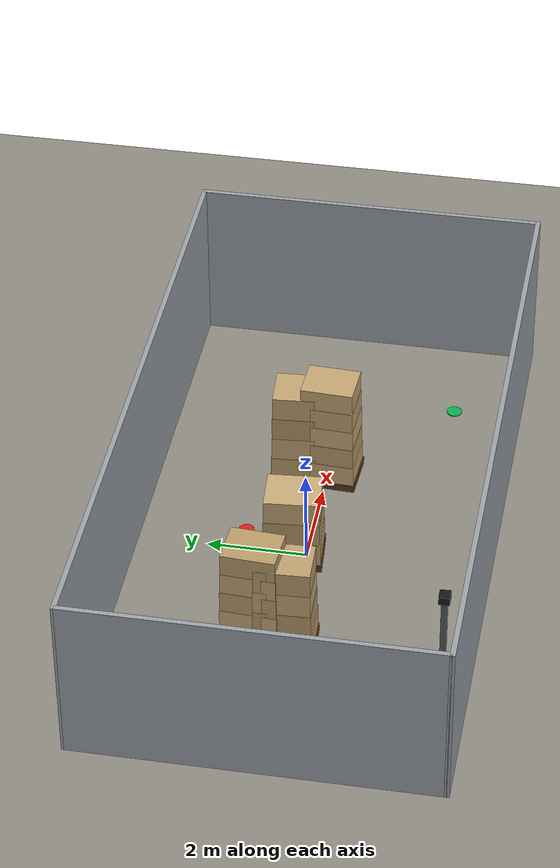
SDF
<sdf version="1.7">
 <world name="warehouse_putaway">
  <atmosphere type="adiabatic"/>
  <gravity>0 0 -9.8</gravity>
  <magnetic_field>6.0e-6 2.3e-5 -4.2e-5</magnetic_field>
  <physics type="ode" name="default_physics">
   <max_step_size>0.004</max_step_size>
   <real_time_factor>1.0</real_time_factor>
   <real_time_update_rate>250</real_time_update_rate>
  </physics>
  <plugin filename="gz-sim-physics-system" name="gz::sim::systems::Physics"/>
  <plugin filename="gz-sim-user-commands-system" name="gz::sim::systems::UserCommands"/>
  <plugin filename="gz-sim-scene-broadcaster-system" name="gz::sim::systems::SceneBroadcaster"/>
  <plugin filename="gz-sim-sensors-system" name="gz::sim::systems::Sensors">
   <render_engine>ogre2</render_engine>
  </plugin>
  <light name="sun" type="directional">
   <pose>0 0 10 0 0 0</pose>
   <diffuse>1.0 1.0 1.0 1</diffuse>
   <specular>0.2 0.2 0.2 1</specular>
   <direction>-0.3 0.2 -0.9</direction>
  </light>
  <scene>
   <ambient>0.58 0.58 0.58 1</ambient>
   <background>0.70 0.72 0.74 1</background>
   <shadows>true</shadows>
  </scene>
  <model name="ground_plane">
   <static>true</static>
   <link name="link">
    <collision name="collision">
     <geometry><plane><normal>0 0 1</normal><size>20 20</size></plane></geometry>
    </collision>
    <visual name="visual">
     <geometry><plane><normal>0 0 1</normal><size>14.6 8.0</size></plane></geometry>
     <material>
      <ambient>0.56 0.55 0.51 1</ambient>
      <diffuse>0.56 0.55 0.51 1</diffuse>
      <specular>0.05 0.05 0.05 1</specular>
     </material>
    </visual>
   </link>
  </model>
  <model name="warehouse_walls">
   <static>true</static>
   <link name="south_wall">
    <pose>0.60 -3.65 1.75 0 0 0</pose>
    <collision name="collision"><geometry><box><size>13.40 0.10 3.50</size></box></geometry></collision>
    <visual name="visual">
     <geometry><box><size>13.40 0.10 3.50</size></box></geometry>
     <material><ambient>0.62 0.64 0.67 1</ambient><diffuse>0.62 0.64 0.67 1</diffuse></material>
    </visual>
   </link>
   <link name="north_wall">
    <pose>0.60  3.45 1.75 0 0 0</pose>
    <collision name="collision"><geometry><box><size>13.40 0.10 3.50</size></box></geometry></collision>
    <visual name="visual">
     <geometry><box><size>13.40 0.10 3.50</size></box></geometry>
     <material><ambient>0.62 0.64 0.67 1</ambient><diffuse>0.62 0.64 0.67 1</diffuse></material>
    </visual>
   </link>
   <link name="west_wall">
    <pose>-6.05 -0.10 1.75 0 0 0</pose>
    <collision name="collision"><geometry><box><size>0.10 7.10 3.50</size></box></geometry></collision>
    <visual name="visual">
     <geometry><box><size>0.10 7.10 3.50</size></box></geometry>
     <material><ambient>0.62 0.64 0.67 1</ambient><diffuse>0.62 0.64 0.67 1</diffuse></material>
    </visual>
   </link>
   <link name="east_wall">
    <pose>7.25 -0.10 1.75 0 0 0</pose>
    <collision name="collision"><geometry><box><size>0.10 7.10 3.50</size></box></geometry></collision>
    <visual name="visual">
     <geometry><box><size>0.10 7.10 3.50</size></box></geometry>
     <material><ambient>0.62 0.64 0.67 1</ambient><diffuse>0.62 0.64 0.67 1</diffuse></material>
    </visual>
   </link>
   <link name="dock_bumper_1">
    <pose>-4.50 -3.59 0.075 0 0 0</pose>
    <visual name="visual">
     <geometry><box><size>1.60 0.055 0.15</size></box></geometry>
     <material><ambient>0.50 0.50 0.50 1</ambient><diffuse>0.50 0.50 0.50 1</diffuse></material>
    </visual>
   </link>
   <link name="dock_bumper_2">
    <pose>-1.50 -3.59 0.075 0 0 0</pose>
    <visual name="visual">
     <geometry><box><size>1.60 0.055 0.15</size></box></geometry>
     <material><ambient>0.50 0.50 0.50 1</ambient><diffuse>0.50 0.50 0.50 1</diffuse></material>
    </visual>
   </link>
   <link name="dock_bumper_3">
    <pose>2.00 -3.59 0.075 0 0 0</pose>
    <visual name="visual">
     <geometry><box><size>1.60 0.055 0.15</size></box></geometry>
     <material><ambient>0.50 0.50 0.50 1</ambient><diffuse>0.50 0.50 0.50 1</diffuse></material>
    </visual>
   </link>
   <link name="dock_bumper_4">
    <pose>5.00 -3.59 0.075 0 0 0</pose>
    <visual name="visual">
     <geometry><box><size>1.60 0.055 0.15</size></box></geometry>
     <material><ambient>0.50 0.50 0.50 1</ambient><diffuse>0.50 0.50 0.50 1</diffuse></material>
    </visual>
   </link>
   <link name="dock_door_1">
    <pose>-4.50 -3.57 1.30 0 0 0</pose>
    <visual name="visual">
     <geometry><box><size>2.30 0.06 2.60</size></box></geometry>
     <material><ambient>0.45 0.48 0.52 1</ambient><diffuse>0.45 0.48 0.52 1</diffuse></material>
    </visual>
   </link>
   <link name="dock_door_2">
    <pose>-1.50 -3.57 1.30 0 0 0</pose>
    <visual name="visual">
     <geometry><box><size>2.30 0.06 2.60</size></box></geometry>
     <material><ambient>0.45 0.48 0.52 1</ambient><diffuse>0.45 0.48 0.52 1</diffuse></material>
    </visual>
   </link>
   <link name="dock_door_3">
    <pose>2.00 -3.57 1.30 0 0 0</pose>
    <visual name="visual">
     <geometry><box><size>2.30 0.06 2.60</size></box></geometry>
     <material><ambient>0.45 0.48 0.52 1</ambient><diffuse>0.45 0.48 0.52 1</diffuse></material>
    </visual>
   </link>
  </model>
  <model name="pallet_stacks">
   <static>true</static>
   <link name="w1_pallet">
    <pose>-2.60 -0.05 0.075 0 0 0.04</pose>
    <visual name="visual">
     <geometry><box><size>1.00 1.20 0.15</size></box></geometry>
     <material><ambient>0.36 0.22 0.10 1</ambient><diffuse>0.36 0.22 0.10 1</diffuse></material>
    </visual>
   </link>
   <link name="w1_envelope">
    <pose>-2.60 -0.05 1.075 0 0 0</pose>
    <collision name="collision"><geometry><box><size>1.00 1.20 2.15</size></box></geometry></collision>
   </link>
   <link name="w1_l1">
    <pose>-2.60 -0.05 0.40 0 0 0.04</pose>
    <visual name="visual">
     <geometry><box><size>0.95 1.15 0.50</size></box></geometry>
     <material><ambient>0.78 0.66 0.46 1</ambient><diffuse>0.78 0.66 0.46 1</diffuse></material>
    </visual>
   </link>
   <link name="w1_l2">
    <pose>-2.60 -0.05 0.90 0 0 0.04</pose>
    <visual name="visual">
     <geometry><box><size>0.92 1.12 0.50</size></box></geometry>
     <material><ambient>0.74 0.62 0.42 1</ambient><diffuse>0.74 0.62 0.42 1</diffuse></material>
    </visual>
   </link>
   <link name="w1_l3">
    <pose>-2.60 -0.05 1.40 0 0 0.04</pose>
    <visual name="visual">
     <geometry><box><size>0.90 1.10 0.50</size></box></geometry>
     <material><ambient>0.80 0.68 0.48 1</ambient><diffuse>0.80 0.68 0.48 1</diffuse></material>
    </visual>
   </link>
   <link name="w1_l4">
    <pose>-2.60 -0.05 1.90 0 0 0.04</pose>
    <visual name="visual">
     <geometry><box><size>0.88 1.08 0.50</size></box></geometry>
     <material><ambient>0.76 0.64 0.44 1</ambient><diffuse>0.76 0.64 0.44 1</diffuse></material>
    </visual>
   </link>
   <link name="w2_pallet">
    <pose>-2.60 0.55 0.075 0 0 -0.06</pose>
    <visual name="visual">
     <geometry><box><size>1.00 1.20 0.15</size></box></geometry>
     <material><ambient>0.36 0.22 0.10 1</ambient><diffuse>0.36 0.22 0.10 1</diffuse></material>
    </visual>
   </link>
   <link name="w2_envelope">
    <pose>-2.60 0.55 1.275 0 0 0</pose>
    <collision name="collision"><geometry><box><size>1.00 1.20 2.40</size></box></geometry></collision>
   </link>
   <link name="w2_l1">
    <pose>-2.60 0.55 0.375 0 0 -0.06</pose>
    <visual name="visual">
     <geometry><box><size>0.95 1.15 0.45</size></box></geometry>
     <material><ambient>0.76 0.64 0.44 1</ambient><diffuse>0.76 0.64 0.44 1</diffuse></material>
    </visual>
   </link>
   <link name="w2_l2">
    <pose>-2.60 0.55 0.825 0 0 -0.06</pose>
    <visual name="visual">
     <geometry><box><size>0.92 1.12 0.45</size></box></geometry>
     <material><ambient>0.80 0.68 0.48 1</ambient><diffuse>0.80 0.68 0.48 1</diffuse></material>
    </visual>
   </link>
   <link name="w2_l3">
    <pose>-2.60 0.55 1.275 0 0 -0.06</pose>
    <visual name="visual">
     <geometry><box><size>0.90 1.10 0.45</size></box></geometry>
     <material><ambient>0.74 0.62 0.42 1</ambient><diffuse>0.74 0.62 0.42 1</diffuse></material>
    </visual>
   </link>
   <link name="w2_l4">
    <pose>-2.60 0.55 1.725 0 0 -0.06</pose>
    <visual name="visual">
     <geometry><box><size>0.88 1.08 0.45</size></box></geometry>
     <material><ambient>0.78 0.66 0.46 1</ambient><diffuse>0.78 0.66 0.46 1</diffuse></material>
    </visual>
   </link>
   <link name="w2_l5">
    <pose>-2.60 0.55 2.175 0 0 -0.06</pose>
    <visual name="visual">
     <geometry><box><size>0.86 1.06 0.45</size></box></geometry>
     <material><ambient>0.74 0.62 0.42 1</ambient><diffuse>0.74 0.62 0.42 1</diffuse></material>
    </visual>
   </link>
   <link name="m_pallet">
    <pose>0.00 0.25 0.075 0 0 0.08</pose>
    <visual name="visual">
     <geometry><box><size>1.00 1.20 0.15</size></box></geometry>
     <material><ambient>0.36 0.22 0.10 1</ambient><diffuse>0.36 0.22 0.10 1</diffuse></material>
    </visual>
   </link>
   <link name="m_envelope">
    <pose>0.00 0.25 0.825 0 0 0</pose>
    <collision name="collision"><geometry><box><size>1.00 1.20 1.65</size></box></geometry></collision>
   </link>
   <link name="m_l1">
    <pose>0.00 0.25 0.40 0 0 0.08</pose>
    <visual name="visual">
     <geometry><box><size>0.95 1.15 0.50</size></box></geometry>
     <material><ambient>0.78 0.66 0.46 1</ambient><diffuse>0.78 0.66 0.46 1</diffuse></material>
    </visual>
   </link>
   <link name="m_l2">
    <pose>0.00 0.25 0.90 0 0 0.08</pose>
    <visual name="visual">
     <geometry><box><size>0.92 1.12 0.50</size></box></geometry>
     <material><ambient>0.74 0.62 0.42 1</ambient><diffuse>0.74 0.62 0.42 1</diffuse></material>
    </visual>
   </link>
   <link name="m_l3">
    <pose>0.00 0.25 1.40 0 0 0.08</pose>
    <visual name="visual">
     <geometry><box><size>0.90 1.10 0.50</size></box></geometry>
     <material><ambient>0.80 0.68 0.48 1</ambient><diffuse>0.80 0.68 0.48 1</diffuse></material>
    </visual>
   </link>
   <link name="e1_pallet">
    <pose>2.60 -0.05 0.075 0 0 -0.05</pose>
    <visual name="visual">
     <geometry><box><size>1.00 1.20 0.15</size></box></geometry>
     <material><ambient>0.36 0.22 0.10 1</ambient><diffuse>0.36 0.22 0.10 1</diffuse></material>
    </visual>
   </link>
   <link name="e1_envelope">
    <pose>2.60 -0.05 1.275 0 0 0</pose>
    <collision name="collision"><geometry><box><size>1.00 1.20 2.40</size></box></geometry></collision>
   </link>
   <link name="e1_l1">
    <pose>2.60 -0.05 0.375 0 0 -0.05</pose>
    <visual name="visual">
     <geometry><box><size>0.95 1.15 0.45</size></box></geometry>
     <material><ambient>0.78 0.66 0.46 1</ambient><diffuse>0.78 0.66 0.46 1</diffuse></material>
    </visual>
   </link>
   <link name="e1_l2">
    <pose>2.60 -0.05 0.825 0 0 -0.05</pose>
    <visual name="visual">
     <geometry><box><size>0.92 1.12 0.45</size></box></geometry>
     <material><ambient>0.74 0.62 0.42 1</ambient><diffuse>0.74 0.62 0.42 1</diffuse></material>
    </visual>
   </link>
   <link name="e1_l3">
    <pose>2.60 -0.05 1.275 0 0 -0.05</pose>
    <visual name="visual">
     <geometry><box><size>0.90 1.10 0.45</size></box></geometry>
     <material><ambient>0.80 0.68 0.48 1</ambient><diffuse>0.80 0.68 0.48 1</diffuse></material>
    </visual>
   </link>
   <link name="e1_l4">
    <pose>2.60 -0.05 1.725 0 0 -0.05</pose>
    <visual name="visual">
     <geometry><box><size>0.88 1.08 0.45</size></box></geometry>
     <material><ambient>0.76 0.64 0.44 1</ambient><diffuse>0.76 0.64 0.44 1</diffuse></material>
    </visual>
   </link>
   <link name="e1_l5">
    <pose>2.60 -0.05 2.175 0 0 -0.05</pose>
    <visual name="visual">
     <geometry><box><size>0.86 1.06 0.45</size></box></geometry>
     <material><ambient>0.78 0.66 0.46 1</ambient><diffuse>0.78 0.66 0.46 1</diffuse></material>
    </visual>
   </link>
   <link name="e2_pallet">
    <pose>2.60 0.55 0.075 0 0 0.07</pose>
    <visual name="visual">
     <geometry><box><size>1.00 1.20 0.15</size></box></geometry>
     <material><ambient>0.36 0.22 0.10 1</ambient><diffuse>0.36 0.22 0.10 1</diffuse></material>
    </visual>
   </link>
   <link name="e2_envelope">
    <pose>2.60 0.55 1.075 0 0 0</pose>
    <collision name="collision"><geometry><box><size>1.00 1.20 2.15</size></box></geometry></collision>
   </link>
   <link name="e2_l1">
    <pose>2.60 0.55 0.40 0 0 0.07</pose>
    <visual name="visual">
     <geometry><box><size>0.95 1.15 0.50</size></box></geometry>
     <material><ambient>0.76 0.64 0.44 1</ambient><diffuse>0.76 0.64 0.44 1</diffuse></material>
    </visual>
   </link>
   <link name="e2_l2">
    <pose>2.60 0.55 0.90 0 0 0.07</pose>
    <visual name="visual">
     <geometry><box><size>0.92 1.12 0.50</size></box></geometry>
     <material><ambient>0.80 0.68 0.48 1</ambient><diffuse>0.80 0.68 0.48 1</diffuse></material>
    </visual>
   </link>
   <link name="e2_l3">
    <pose>2.60 0.55 1.40 0 0 0.07</pose>
    <visual name="visual">
     <geometry><box><size>0.90 1.10 0.50</size></box></geometry>
     <material><ambient>0.74 0.62 0.42 1</ambient><diffuse>0.74 0.62 0.42 1</diffuse></material>
    </visual>
   </link>
   <link name="e2_l4">
    <pose>2.60 0.55 1.90 0 0 0.07</pose>
    <visual name="visual">
     <geometry><box><size>0.88 1.08 0.50</size></box></geometry>
     <material><ambient>0.78 0.66 0.46 1</ambient><diffuse>0.78 0.66 0.46 1</diffuse></material>
    </visual>
   </link>
  </model>
  <model name="rear_rack_collisions">
   <static>true</static>
   <link name="rear_rack_west">
    <pose>-3.80 2.85 0.60 0 0 0</pose>
    <collision name="collision"><geometry><box><size>2.20 0.45 1.20</size></box></geometry></collision>
   </link>
   <link name="rear_rack_mid">
    <pose>0.00 2.85 0.60 0 0 0</pose>
    <collision name="collision"><geometry><box><size>2.60 0.45 1.20</size></box></geometry></collision>
   </link>
   <link name="rear_rack_east">
    <pose>4.20 2.85 0.60 0 0 0</pose>
    <collision name="collision"><geometry><box><size>2.60 0.45 1.20</size></box></geometry></collision>
   </link>
  </model>
  <model name="mission_floor_markers">
   <static>true</static>
   <link name="A_scan_pickup">
    <pose>-3.80 -2.00 0.055 0 0 0</pose>
    <visual name="visual">
     <geometry><cylinder><radius>0.16</radius><length>0.018</length></cylinder></geometry>
     <material><ambient>0.02 0.22 0.86 1</ambient><diffuse>0.02 0.22 0.86 1</diffuse></material>
    </visual>
   </link>
   <link name="B_putaway">
    <pose>4.20 1.25 0.057 0 0 0</pose>
    <visual name="visual">
     <geometry><cylinder><radius>0.16</radius><length>0.018</length></cylinder></geometry>
     <material><ambient>0.02 0.52 0.22 1</ambient><diffuse>0.02 0.52 0.22 1</diffuse></material>
    </visual>
   </link>
   <link name="G_outbound">
    <pose>5.00 -2.30 0.057 0 0 0</pose>
    <visual name="visual">
     <geometry><cylinder><radius>0.16</radius><length>0.018</length></cylinder></geometry>
     <material><ambient>0.02 0.70 0.30 1</ambient><diffuse>0.02 0.70 0.30 1</diffuse></material>
    </visual>
   </link>
   <link name="G_in_shadow">
    <pose>0.50 1.30 0.057 0 0 0</pose>
    <visual name="visual">
     <geometry><cylinder><radius>0.16</radius><length>0.018</length></cylinder></geometry>
     <material><ambient>0.86 0.12 0.10 1</ambient><diffuse>0.86 0.12 0.10 1</diffuse></material>
    </visual>
   </link>
  </model>
  <model name="camera_mount">
   <static>true</static>
   <link name="column">
    <pose>-5.40 -3.40 2.025 0 0 0</pose>
    <visual name="visual">
     <geometry><cylinder><radius>0.06</radius><length>4.05</length></cylinder></geometry>
     <material><ambient>0.32 0.34 0.36 1</ambient><diffuse>0.32 0.34 0.36 1</diffuse></material>
    </visual>
   </link>
   <link name="bracket">
    <pose>-5.40 -3.40 4.10 0 0 0</pose>
    <visual name="visual">
     <geometry><box><size>0.06 0.18 0.04</size></box></geometry>
     <material><ambient>0.42 0.44 0.46 1</ambient><diffuse>0.42 0.44 0.46 1</diffuse></material>
    </visual>
   </link>
   <link name="camera_body">
    <pose>-5.40 -3.40 4.20 0 0 0</pose>
    <visual name="visual">
     <geometry><box><size>0.22 0.20 0.16</size></box></geometry>
     <material><ambient>0.08 0.09 0.10 1</ambient><diffuse>0.08 0.09 0.10 1</diffuse></material>
    </visual>
   </link>
  </model>
  <include>
   <name>external_camera</name>
   <uri>model://external_camera</uri>
   <pose>-5.40 -3.40 4.20 0 0.70 0.65</pose>
  </include>
 </world>
</sdf>

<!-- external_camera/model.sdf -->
<sdf version="1.6">
  <model name="external_camera">
    <static>true</static>
    <pose>0 0 0 0 0 0</pose>
    <link name="link">
      <sensor name="camera" type="camera">
        <camera>
          <horizontal_fov>1.5708</horizontal_fov> <!-- 90 degrees -->
          <image>
            <width>1280</width>
            <height>720</height>
          </image>
          <clip>
            <near>0.1</near>
            <far>100</far>
          </clip>
        </camera>
        <always_on>1</always_on>
        <update_rate>30</update_rate>
        <visualize>false</visualize>
        <topic>external_camera/image_raw</topic>
      </sensor>
      <sensor name="segmentation_camera" type="segmentation">
        <camera>
          <segmentation_type>semantic</segmentation_type>
          <horizontal_fov>1.5708</horizontal_fov>
          <image>
            <width>1280</width>
            <height>720</height>
          </image>
          <clip>
            <near>0.1</near>
            <far>100</far>
          </clip>
        </camera>
        <always_on>1</always_on>
        <update_rate>30</update_rate>
        <visualize>false</visualize>
        <topic>external_camera/segmentation</topic>
      </sensor>
    </link>
  </model>
</sdf>
